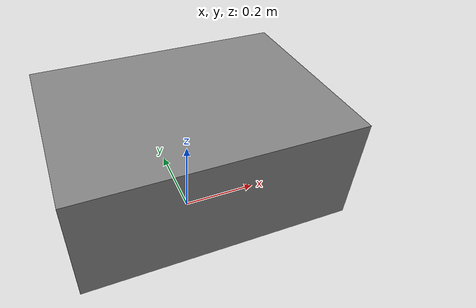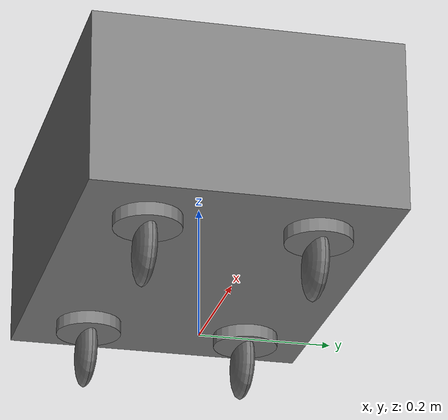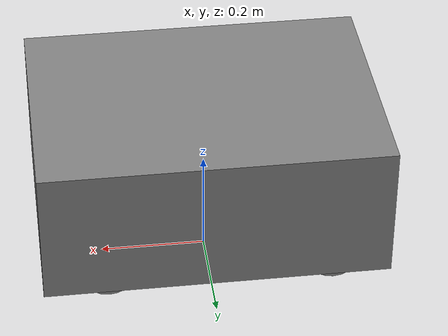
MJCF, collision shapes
<mujoco model="dyros_pcv">
    <compiler angle="radian" meshdir="assets"/>

    <option timestep="0.001" integrator="implicit"/>

    <default>
        <default class="dyros_pcv">
            <material specular="0.5" shininess="0.25"/>
            <joint armature="0.1" damping="1"/>
            <position inheritrange="1"/>
            <default class="dyros_pcv_visual">
                <geom type="mesh" contype="0" conaffinity="0" group="2"/>
            </default>

            <default class="dyros_pcv_collision">
                <geom type="mesh" group="3"/>
            </default>

            <site size="0.001" rgba="0.5 0.5 0.5 0.3" group="4"/>
        </default>
    </default>

    <asset>
        <material class="dyros_pcv" name="silver" rgba="0.8 0.8 0.8 1"/>
        <material class="dyros_pcv" name="black" rgba="0.1 0.1 0.1 1"/>

        <!-- Visual meshes -->
        <mesh name="body_bottom"  file="body_bottom.stl"/>
        <mesh name="body_side"    file="body_side.stl"/>
        <mesh name="body_top"     file="body_top.stl"/>
        <mesh name="wheel_body"   file="wheel_body.stl"/>
        <mesh name="wheel_rotate" file="wheel_rotate.stl"/>

    </asset>

    <worldbody>
        <body name="base_footprint" pos="0 0 0.1" childclass="dyros_pcv">
            <joint type="free" stiffness="0" damping="0" frictionloss="0" armature="0" />

            <!-- Base link -->
            <body name="base_link" pos="0 0 0">
                <geom class="dyros_pcv_visual" type="mesh" mesh="body_bottom" material="black" />
                <geom class="dyros_pcv_visual" type="mesh" mesh="body_side" material="black" />
                <geom class="dyros_pcv_visual" type="mesh" mesh="body_top" material="black" />
                <geom class="dyros_pcv_collision" type="box" pos="0 0 0.12" size="0.320 0.23 0.13" group="3"/>
                <site name="dyros_pcv_site"  size = "0.005" rgba = ".1 .1 .9 1" type = "sphere" />
                <inertial pos="0 0 0" mass="10.95" diaginertia="0.2491 0.4255 0.5545"/>

                <!-- Front left steer link and joint -->
                <body name="front_left_steer" pos="0.215 0.125 0">
                    <geom type="mesh" class="dyros_pcv_visual" mesh="wheel_body" material="silver" />
                    <geom type="cylinder" class="dyros_pcv_collision" size="0.05 0.03" group="3" />
                    <joint name="front_left_steer" type="hinge" axis="0 0 1" range="-1000000 1000000" />
                    <inertial pos="0 0 0" mass="2.0" diaginertia="0.002 0.002 0.002"/>

                    <!-- Front left rotate link and joint -->
                    <body name="front_left_rotate" pos="-0.02 0 -0.052" >
                        <geom class="dyros_pcv_visual" type="mesh" mesh="wheel_rotate" material="black" />
                        <geom class="dyros_pcv_collision" type="ellipsoid" size="0.055 0.055 0.015" group="3" euler="-1.5708 0 0" />
                        <joint name="front_left_rotate" type="hinge" axis="0 1 0" range="-1000000 1000000" />
                        <inertial pos="0 0 0" mass="0.72" diaginertia="0.0005685 0.001089 0.0005685"/>
                    </body>
                </body>

                <!-- Rear left steer link and joint -->
                <body name="rear_left_steer" pos="-0.215 0.125 0">
                    <geom class="dyros_pcv_visual" type="mesh" mesh="wheel_body" material="silver" />
                    <geom class="dyros_pcv_collision" type="cylinder" size="0.05 0.03" group="3" />
                    <joint name="rear_left_steer" type="hinge" axis="0 0 1" range="-1000000 1000000" />
                    <inertial pos="0 0 0" mass="2.0" diaginertia="0.002 0.002 0.002"/>

                    <!-- Rear left rotate link and joint -->
                    <body name="rear_left_rotate" pos="-0.02 0 -0.052">
                        <geom class="dyros_pcv_visual" type="mesh" mesh="wheel_rotate" material="black" />
                        <geom class="dyros_pcv_collision" type="ellipsoid" size="0.055 0.055 0.015" group="3" euler="-1.5708 0 0" />
                        <joint name="rear_left_rotate" type="hinge" axis="0 1 0" range="-1000000 1000000" />
                        <inertial pos="0 0 0" mass="0.72" diaginertia="0.0005685 0.001089 0.0005685"/>
                    </body>
                </body>

                <!-- Rear right steer link and joint -->
                <body name="rear_right_steer" pos="-0.215 -0.125 0">
                    <geom class="dyros_pcv_visual" type="mesh" mesh="wheel_body" material="silver" />
                    <geom class="dyros_pcv_collision" type="cylinder" size="0.05 0.03" group="3" />
                    <joint name="rear_right_steer" type="hinge" axis="0 0 1" range="-1000000 1000000" />
                    <inertial pos="0 0 0" mass="2.0" diaginertia="0.002 0.002 0.002"/>

                    <!-- Rear right rotate link and joint -->
                    <body name="rear_right_rotate" pos="-0.02 0 -0.052">
                        <geom class="dyros_pcv_visual" type="mesh" mesh="wheel_rotate" material="black" />
                        <geom class="dyros_pcv_collision" type="ellipsoid" size="0.055 0.055 0.015" group="3" euler="-1.5708 0 0" />
                        <joint name="rear_right_rotate" type="hinge" axis="0 1 0" range="-1000000 1000000" />
                        <inertial pos="0 0 0" mass="0.72" diaginertia="0.0005685 0.001089 0.0005685"/>
                    </body>
                </body>

                <!-- Front right steer link and joint -->
                <body name="front_right_steer" pos="0.215 -0.125 0">
                    <geom class="dyros_pcv_visual" type="mesh" mesh="wheel_body" material="silver" />
                    <geom class="dyros_pcv_collision" type="cylinder" size="0.05 0.03" group="3" />
                    <joint name="front_right_steer" type="hinge" axis="0 0 1" range="-1000000 1000000" />
                    <inertial pos="0 0 0" mass="2.0" diaginertia="0.002 0.002 0.002"/>

                    <!-- Front right rotate link and joint -->
                    <body name="front_right_rotate" pos="-0.02 0 -0.052">
                        <geom class="dyros_pcv_visual" type="mesh" mesh="wheel_rotate" material="black" />
                        <geom class="dyros_pcv_collision" type="ellipsoid" size="0.055 0.055 0.015" group="3" euler="-1.5708 0 0" />
                        <joint name="front_right_rotate" type="hinge" axis="0 1 0" range="-1000000 1000000" />
                        <inertial pos="0 0 0" mass="0.72" diaginertia="0.0005685 0.001089 0.0005685"/>
                    </body>
                </body>
            </body>
        </body>
    </worldbody>

    <actuator>
        <velocity name="front_left_rotate"  joint="front_left_rotate"  kv="100" forcerange="-500 500" ctrlrange="-200 200"/>
        <velocity name="front_right_rotate" joint="front_right_rotate" kv="100" forcerange="-500 500" ctrlrange="-200 200"/>
        <velocity name="rear_left_rotate"   joint="rear_left_rotate"   kv="100" forcerange="-500 500" ctrlrange="-200 200"/>
        <velocity name="rear_right_rotate"  joint="rear_right_rotate"  kv="100" forcerange="-500 500" ctrlrange="-200 200"/>
        <velocity name="front_left_steer"   joint="front_left_steer"   kv="100" forcerange="-500 500" ctrlrange="-200 200"/>
        <velocity name="front_right_steer"  joint="front_right_steer"  kv="100" forcerange="-500 500" ctrlrange="-200 200"/>
        <velocity name="rear_left_steer"    joint="rear_left_steer"    kv="100" forcerange="-500 500" ctrlrange="-200 200"/>
        <velocity name="rear_right_steer"   joint="rear_right_steer"   kv="100" forcerange="-500 500" ctrlrange="-200 200"/>
    </actuator>

    <sensor>
        <framepos name="position_sensor" objtype="site" objname="dyros_pcv_site"/>
        <framequat name="orientation_sensor" objtype="site" objname="dyros_pcv_site"/>
        <framelinvel name="linear_velocity_sensor" objtype="site" objname="dyros_pcv_site"/>
        <frameangvel name="angular_velocity_sensor" objtype="site" objname="dyros_pcv_site"/>
    </sensor>

</mujoco>
